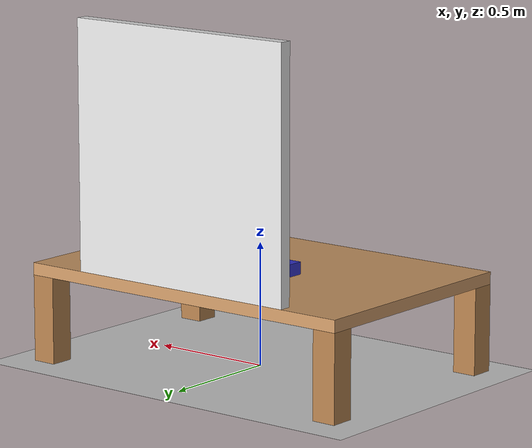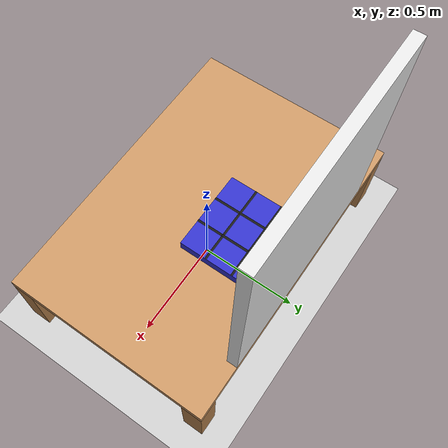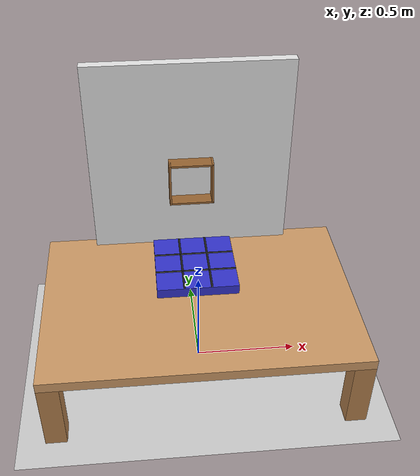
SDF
<sdf version="1.10">
 <world name="jetrover_world">
  <physics name="1ms" type="ignored">
   <max_step_size>0.001</max_step_size>
   <real_time_factor>1</real_time_factor>
   <real_time_update_rate>1000</real_time_update_rate>
  </physics>
  <plugin name="gz::sim::systems::Physics" filename="gz-sim-physics-system"/>
  <plugin name="gz::sim::systems::UserCommands" filename="gz-sim-user-commands-system"/>
  <plugin name="gz::sim::systems::SceneBroadcaster" filename="gz-sim-scene-broadcaster-system"/>
  <gravity>0 0 -9.8000000000000007</gravity>
  <magnetic_field>5.5644999999999998e-06 2.2875799999999999e-05 -4.2388400000000002e-05</magnetic_field>
  <atmosphere type="adiabatic"/>
  <scene>
   <ambient>0.400000006 0.400000006 0.400000006 1</ambient>
   <background>0.699999988 0.699999988 0.699999988 1</background>
   <shadows>true</shadows>
  </scene>
  <model name="ground_plane">
   <static>true</static>
   <link name="link">
    <collision name="collision">
     <geometry><plane><normal>0 0 1</normal><size>100 100</size></plane></geometry>
     <surface>
      <contact><collide_bitmask>65535</collide_bitmask><ode><mu>100</mu><mu2>50</mu2></ode></contact>
      <friction><ode><mu>100</mu><mu2>50</mu2></ode></friction>
     </surface>
    </collision>
    <visual name="visual">
     <cast_shadows>false</cast_shadows>
     <geometry><plane><normal>0 0 1</normal><size>100 100</size></plane></geometry>
     <material>
      <ambient>0.800000012 0.800000012 0.800000012 1</ambient>
      <diffuse>0.800000012 0.800000012 0.800000012 1</diffuse>
      <specular>0 0 0 1</specular>
     </material>
    </visual>
    <inertial>
     <mass>1</mass>
     <inertia><ixx>1</ixx><ixy>0</ixy><ixz>0</ixz><iyy>1</iyy><iyz>0</iyz><izz>1</izz></inertia>
    </inertial>
   </link>
  </model>
  <model name="study_table">
   <static>true</static>
   <link name="table_link">
    <inertial>
     <mass>50</mass>
     <inertia><ixx>10</ixx><iyy>8</iyy><izz>6</izz><ixy>0</ixy><ixz>0</ixz><iyz>0</iyz></inertia>
    </inertial>
    <visual name="table_top">
     <pose>0 0 0.375 0 0 0</pose>
     <geometry><box><size>1.5 1 0.050000000000000003</size></box></geometry>
     <material>
      <ambient>0.800000012 0.600000024 0.400000006 1</ambient>
      <diffuse>0.800000012 0.600000024 0.400000006 1</diffuse>
     </material>
    </visual>
    <visual name="table_leg1">
     <pose>0.69999999999999996 0.45000000000000001 0.17499999999999999 0 0 0</pose>
     <geometry><box><size>0.10000000000000001 0.10000000000000001 0.34999999999999998</size></box></geometry>
     <material>
      <ambient>0.699999988 0.5 0.300000012 1</ambient>
      <diffuse>0.699999988 0.5 0.300000012 1</diffuse>
     </material>
    </visual>
    <visual name="table_leg2">
     <pose>-0.69999999999999996 0.45000000000000001 0.17499999999999999 0 0 0</pose>
     <geometry><box><size>0.10000000000000001 0.10000000000000001 0.34999999999999998</size></box></geometry>
     <material>
      <ambient>0.699999988 0.5 0.300000012 1</ambient>
      <diffuse>0.699999988 0.5 0.300000012 1</diffuse>
     </material>
    </visual>
    <visual name="table_leg3">
     <pose>0.69999999999999996 -0.45000000000000001 0.17499999999999999 0 0 0</pose>
     <geometry><box><size>0.10000000000000001 0.10000000000000001 0.34999999999999998</size></box></geometry>
     <material>
      <ambient>0.699999988 0.5 0.300000012 1</ambient>
      <diffuse>0.699999988 0.5 0.300000012 1</diffuse>
     </material>
    </visual>
    <visual name="table_leg4">
     <pose>-0.69999999999999996 -0.45000000000000001 0.17499999999999999 0 0 0</pose>
     <geometry><box><size>0.10000000000000001 0.10000000000000001 0.34999999999999998</size></box></geometry>
     <material>
      <ambient>0.699999988 0.5 0.300000012 1</ambient>
      <diffuse>0.699999988 0.5 0.300000012 1</diffuse>
     </material>
    </visual>
    <collision name="table_collision">
     <pose>0 0 0.375 0 0 0</pose>
     <geometry><box><size>1.5 1 0.050000000000000003</size></box></geometry>
    </collision>
   </link>
  </model>
  <model name="wall">
   <static>true</static>
   <pose>0 0.47499999999999998 0.90000000000000002 0 0 0</pose>
   <link name="wall_link">
    <inertial>
     <mass>20000000</mass>
     <inertia>
      <ixx>1.6699999999999999</ixx>
      <iyy>2.6699999999999999</iyy>
      <izz>1.0700000000000001</izz>
      <ixy>0</ixy>
      <ixz>0</ixz>
      <iyz>0</iyz>
     </inertia>
    </inertial>
    <visual name="wall_visual">
     <geometry><box><size>1.0000000000000004 0.050000000000000003 1</size></box></geometry>
     <material>
      <ambient>0.899999976 0.899999976 0.899999976 1</ambient>
      <diffuse>0.899999976 0.899999976 0.899999976 1</diffuse>
     </material>
    </visual>
    <collision name="wall_collision">
     <geometry><box><size>1 0.050000000000000003 1</size></box></geometry>
    </collision>
   </link>
  </model>
  <model name="tictactoe_game">
   <static>true</static>
   <pose>0 0.20000000000000001 0.42499999999999999 0 0 0</pose>
   <link name="board">
    <inertial>
     <mass>2</mass>
     <inertia>
      <ixx>0.10000000000000001</ixx>
      <iyy>0.10000000000000001</iyy>
      <izz>0.10000000000000001</izz>
      <ixy>0</ixy>
      <ixz>0</ixz>
      <iyz>0</iyz>
     </inertia>
    </inertial>
    <visual name="board_visual">
     <geometry><box><size>0.40000000000000002 0.40000000000000002 0.050000000000000003</size></box></geometry>
     <material>
      <ambient>0.200000003 0.200000003 0.800000012 1</ambient>
      <diffuse>0.200000003 0.200000003 0.800000012 1</diffuse>
     </material>
    </visual>
    <visual name="grid_line1">
     <pose>-0.067000000000000004 0 0.025999999999999999 0 0 0</pose>
     <geometry><box><size>0.01 0.40000000000000002 0.002</size></box></geometry>
     <material>
      <ambient>0.100000001 0.100000001 0.100000001 1</ambient>
      <diffuse>0.100000001 0.100000001 0.100000001 1</diffuse>
     </material>
    </visual>
    <visual name="grid_line2">
     <pose>0.067000000000000004 0 0.025999999999999999 0 0 0</pose>
     <geometry><box><size>0.01 0.40000000000000002 0.002</size></box></geometry>
     <material>
      <ambient>0.100000001 0.100000001 0.100000001 1</ambient>
      <diffuse>0.100000001 0.100000001 0.100000001 1</diffuse>
     </material>
    </visual>
    <visual name="grid_line3">
     <pose>0 -0.067000000000000004 0.025999999999999999 0 0 0</pose>
     <geometry><box><size>0.40000000000000002 0.01 0.002</size></box></geometry>
     <material>
      <ambient>0.100000001 0.100000001 0.100000001 1</ambient>
      <diffuse>0.100000001 0.100000001 0.100000001 1</diffuse>
     </material>
    </visual>
    <visual name="grid_line4">
     <pose>0 0.067000000000000004 0.025999999999999999 0 0 0</pose>
     <geometry><box><size>0.40000000000000002 0.01 0.002</size></box></geometry>
     <material>
      <ambient>0.100000001 0.100000001 0.100000001 1</ambient>
      <diffuse>0.100000001 0.100000001 0.100000001 1</diffuse>
     </material>
    </visual>
    <collision name="board_collision">
     <geometry><box><size>0.40000000000000002 0.40000000000000002 0.050000000000000003</size></box></geometry>
    </collision>
   </link>
  </model>
  <model name="robot_box">
   <static>true</static>
   <pose>0 0.39492899179458613 0.80525898933410633 1.543880074027717 0 0</pose>
   <link name="box_link">
    <inertial>
     <mass>5</mass>
     <inertia>
      <ixx>0.10000000000000001</ixx>
      <iyy>0.10000000000000001</iyy>
      <izz>0.10000000000000001</izz>
      <ixy>0</ixy>
      <ixz>0</ixz>
      <iyz>0</iyz>
     </inertia>
    </inertial>
    <visual name="front_wall">
     <pose>0.105 0 0 0 0 0</pose>
     <geometry><box><size>0.01 0.22 0.074999999999999997</size></box></geometry>
     <material>
      <ambient>0.600000024 0.400000006 0.200000003 1</ambient>
      <diffuse>0.600000024 0.400000006 0.200000003 1</diffuse>
     </material>
    </visual>
    <collision name="front_wall_collision">
     <pose>0.105 0 0 0 0 0</pose>
     <geometry><box><size>0.014 0.27000000000000002 0.074999999999999997</size></box></geometry>
    </collision>
    <visual name="back_wall">
     <pose>-0.105 0 0 0 0 0</pose>
     <geometry><box><size>0.01 0.22 0.074999999999999997</size></box></geometry>
     <material>
      <ambient>0.600000024 0.400000006 0.200000003 1</ambient>
      <diffuse>0.600000024 0.400000006 0.200000003 1</diffuse>
     </material>
    </visual>
    <collision name="back_wall_collision">
     <pose>-0.105 0 0 0 0 0</pose>
     <geometry><box><size>0.01 0.22 0.074999999999999997</size></box></geometry>
    </collision>
    <visual name="left_wall">
     <pose>0 0.105 0 0 0 0</pose>
     <geometry><box><size>0.22 0.01 0.074999999999999997</size></box></geometry>
     <material>
      <ambient>0.600000024 0.400000006 0.200000003 1</ambient>
      <diffuse>0.600000024 0.400000006 0.200000003 1</diffuse>
     </material>
    </visual>
    <collision name="left_wall_collision">
     <pose>0 0.105 0 0 0 0</pose>
     <geometry><box><size>0.22 0.01 0.074999999999999997</size></box></geometry>
    </collision>
    <visual name="right_wall">
     <pose>0 -0.105 0 0 0 0</pose>
     <geometry><box><size>0.22 0.01 0.074999999999999997</size></box></geometry>
     <material>
      <ambient>0.600000024 0.400000006 0.200000003 1</ambient>
      <diffuse>0.600000024 0.400000006 0.200000003 1</diffuse>
     </material>
    </visual>
    <collision name="right_wall_collision">
     <pose>0 -0.105 0 0 0 0</pose>
     <geometry><box><size>0.22 0.01 0.074999999999999997</size></box></geometry>
    </collision>
   </link>
  </model>
  <light name="sun" type="directional">
   <pose>0 0 10 0 0 0</pose>
   <intensity>1</intensity>
   <direction>-0.5 0.10000000000000001 -0.90000000000000002</direction>
   <diffuse>0.800000012 0.800000012 0.800000012 1</diffuse>
   <specular>0.200000003 0.200000003 0.200000003 1</specular>
   <attenuation>
    <range>1000</range>
    <linear>0.0099999997764825821</linear>
    <constant>0.89999997615814209</constant>
    <quadratic>0.0010000000474974513</quadratic>
   </attenuation>
   <spot><inner_angle>0</inner_angle><outer_angle>0</outer_angle><falloff>0</falloff></spot>
  </light>
 </world>
</sdf>
